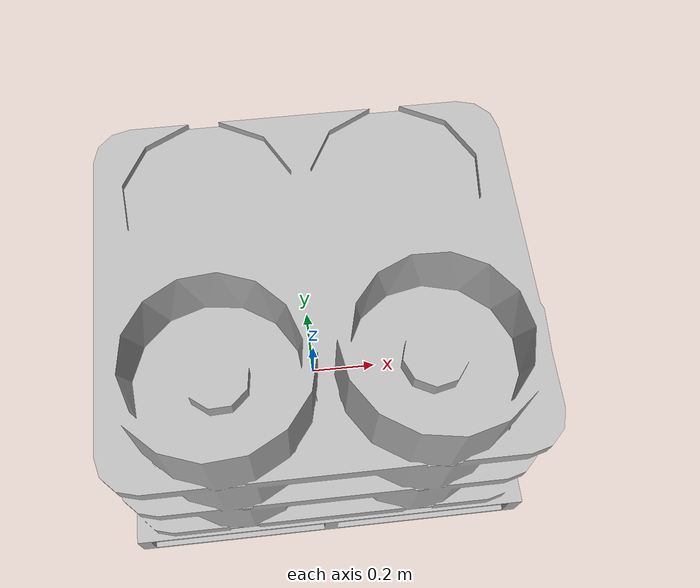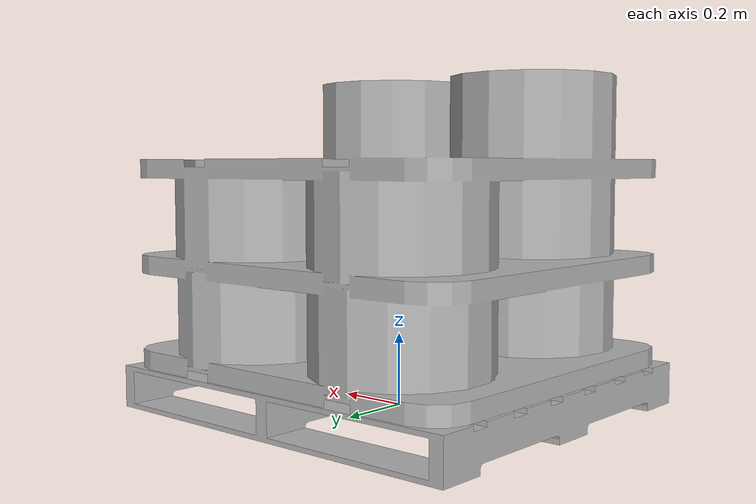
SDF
<?xml version="1.0" ?>
<sdf version="1.6">
  <model name="pallet_forged_wheels_newaxis_semi">
    <static>true</static>
    <link name="link">
      <visual name="visual">
        <geometry>
          <mesh>
            <uri>model://pallet_forged_wheels_newaxis_semi/meshes/pallet_forged_wheels_newaxis_semi.obj</uri>
          </mesh>
        </geometry>
      </visual>
      <collision name="collision">
        <geometry>
          <mesh>
            <uri>model://pallet_forged_wheels_newaxis_semi/meshes/pallet_forged_wheels_newaxis_semi.obj</uri>
          </mesh>
        </geometry>
      </collision>
    </link>
  </model>
</sdf>
